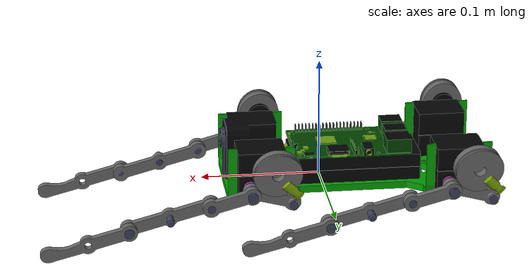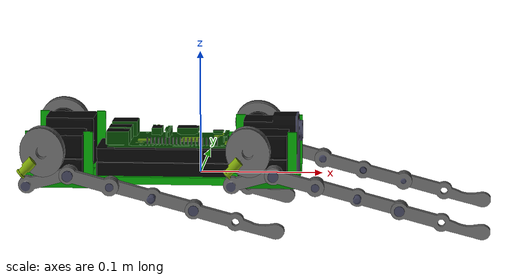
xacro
<?xml version="1.0" ?>
<robot xmlns:xacro="http://ros.org/wiki/xacro" name="felis">
<xacro:include filename="$(find riserobotdb)/defs/robots/felis/felis.common.urdf.xacro" />
<!-- Base Link -->
<xacro:urdf_link _name="base_link" _xyz="${felis_xyz}" _rpy="${felis_rpy}"
	_mesh="${felis_base_mesh}" _mass="${felis_baselink_mass}" _cg="${felis_baselink_cg}"
	 _ixx="${felis_baselink_ixx}" _iyy="${felis_baselink_iyy}" _izz="${felis_baselink_izz}"
	_ixy="${felis_baselink_ixy}" _ixz="${felis_baselink_ixz}" _iyz="${felis_baselink_iyz}"/>
<!-- Spools -->
<xacro:spool suffix="left" portion="front" geom_rpy="${felis_spool_joint_lf_rpy}" joint_xyz="${felis_spool_joint_lf_xyz}" />
<xacro:spool suffix="right" portion="front" geom_rpy="${felis_spool_joint_rf_rpy}" joint_xyz="${felis_spool_joint_rf_xyz}" />
<xacro:spool suffix="left" portion="rear" geom_rpy="${felis_spool_joint_lr_rpy}" joint_xyz="${felis_spool_joint_lr_xyz}" />
<xacro:spool suffix="right" portion="rear" geom_rpy="${felis_spool_joint_rr_rpy}" joint_xyz="${felis_spool_joint_rr_xyz}" />
<!-- Legs -->
<xacro:quadleg_left portion="front" geom_rpy="${felis_linkA_joint_lf_rpy}" joint_xyz="${felis_linkA_joint_lf_xyz}" />
<xacro:quadleg_left portion="rear" geom_rpy="${felis_linkA_joint_lr_rpy}" joint_xyz="${felis_linkA_joint_lr_xyz}" />
<xacro:quadleg_right portion="front" geom_rpy="${felis_linkA_joint_rf_rpy}" joint_xyz="${felis_linkA_joint_rf_xyz}" />
<xacro:quadleg_right portion="rear" geom_rpy="${felis_linkA_joint_rr_rpy}" joint_xyz="${felis_linkA_joint_rr_xyz}" />
</robot>

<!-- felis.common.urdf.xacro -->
<robot xmlns:xacro="http://ros.org/wiki/xacro">
<xacro:include filename="$(find riserobotdb)/defs/common/common.urdf.xacro" />
<xacro:include filename="$(find riserobotdb)/defs/robots/felis/felis.common.xacro" />
<!-- Leg Spool -->
<xacro:macro name="spool" params="suffix portion geom_rpy joint_xyz">
	<xacro:urdf_link _name="${suffix}_${portion}_spool_link" _xyz="0 0 0" _rpy="0 0 0"
		_mesh="${felis_spool_mesh}" _mass="${felis_spool_mass}" _cg="${felis_spool_cg}"
		_ixx="${felis_spool_ixx}" _iyy="${felis_spool_iyy}" _izz="${felis_spool_izz}"
		_ixy="${felis_spool_ixy}" _ixz="${felis_spool_ixz}" _iyz="${felis_spool_iyz}" />
	<xacro:urdf_revolute_joint _name="${suffix}_${portion}_spool_joint" _parent="base_link"
		_child="${suffix}_${portion}_spool_link" _axis="0 0 1" _xyz="${joint_xyz}" _rpy="${geom_rpy}" _lower="${spool_lower_angle}"
		_upper="${spool_upper_angle}" _effort="${spool_joint_effort}" _velocity="${spool_joint_velocity}" />
</xacro:macro>

<!-- Leg Links -->
<xacro:macro name="quadleg_left" params="portion geom_rpy joint_xyz">
	<xacro:urdf_link _name="left_${portion}_quadleg_linkA" _xyz="0 0 0" _rpy="0 0 0"
		_mesh="${felis_linkA_mesh}" _mass="${felis_linkA_mass}" _cg="${felis_linkA_cg}"
		_ixx="${felis_linkA_ixx}" _iyy="${felis_linkA_iyy}" _izz="${felis_linkA_izz}"
		_ixy="${felis_linkA_ixy}" _ixz="${felis_linkA_ixz}" _iyz="${felis_linkA_iyz}" />
	<xacro:urdf_link _name="left_${portion}_quadleg_linkB" _xyz="0 0 0" _rpy="0 0 0"
		_mesh="${felis_linkB_mesh}" _mass="${felis_linkB_mass}" _cg="${felis_linkB_cg}"
		_ixx="${felis_linkB_ixx}" _iyy="${felis_linkB_iyy}" _izz="${felis_linkB_izz}"
		_ixy="${felis_linkB_ixy}" _ixz="${felis_linkB_ixz}" _iyz="${felis_linkB_iyz}" />
	<xacro:urdf_link _name="left_${portion}_quadleg_linkC" _xyz="0 0 0" _rpy="0 0 0"
		_mesh="${felis_linkC_mesh}" _mass="${felis_linkC_mass}" _cg="${felis_linkC_cg}"
		_ixx="${felis_linkC_ixx}" _iyy="${felis_linkC_iyy}" _izz="${felis_linkC_izz}"
		_ixy="${felis_linkC_ixy}" _ixz="${felis_linkC_ixz}" _iyz="${felis_linkC_iyz}" />
	<xacro:urdf_link _name="left_${portion}_quadleg_linkD" _xyz="0 0 0" _rpy="0 0 0"
		_mesh="${felis_linkD_mesh}" _mass="${felis_linkD_mass}" _cg="${felis_linkD_cg}"
		_ixx="${felis_linkD_ixx}" _iyy="${felis_linkD_iyy}" _izz="${felis_linkD_izz}"
		_ixy="${felis_linkD_ixy}" _ixz="${felis_linkD_ixz}" _iyz="${felis_linkD_iyz}" />

	<xacro:urdf_revolute_joint _name="left_${portion}_linkA_joint" _parent="base_link"
		_child="left_${portion}_quadleg_linkA" _axis="0 0 1" _xyz="${joint_xyz}" _rpy="${geom_rpy}" _lower="${quadleg_jointA_lower_angle}"
		_upper="${quadleg_jointA_upper_angle}" _effort="${quadleg_joint_effort}" _velocity="${quadleg_joint_velocity}" />
	<xacro:urdf_revolute_joint _name="left_${portion}_linkB_joint" _parent="left_${portion}_quadleg_linkA"
		_child="left_${portion}_quadleg_linkB" _axis="0 0 1" _xyz="0 0 ${felis_jointAB_zoffset}" _rpy="0 0 -${felis_linkB_starting_angle}" _lower="${quadleg_jointB_lower_angle}"
		_upper="${quadleg_jointB_upper_angle}" _effort="${quadleg_joint_effort}" _velocity="${quadleg_joint_velocity}" />
	<xacro:urdf_revolute_joint _name="left_${portion}_linkC_joint" _parent="left_${portion}_quadleg_linkB"
		_child="left_${portion}_quadleg_linkC" _axis="0 0 1" _xyz="${felis_fulllink_centerlength/2} 0 0" _rpy="0 0 0" _lower="${quadleg_jointC_lower_angle}"
		_upper="${quadleg_jointC_upper_angle}" _effort="${quadleg_joint_effort}" _velocity="${quadleg_joint_velocity}" />
	<xacro:urdf_revolute_joint _name="left_${portion}_linkD_joint" _parent="left_${portion}_quadleg_linkC"
		_child="left_${portion}_quadleg_linkD" _axis="0 0 1" _xyz="${felis_fulllink_centerlength} 0 0" _rpy="0 0 0" _lower="${quadleg_jointD_lower_angle}"
		_upper="${quadleg_jointD_upper_angle}" _effort="${quadleg_joint_effort}" _velocity="${quadleg_joint_velocity}" />

</xacro:macro>
<xacro:macro name="quadleg_right" params="portion geom_rpy joint_xyz">
	<xacro:urdf_link _name="right_${portion}_quadleg_linkA" _xyz="0 0 0" _rpy="0 ${angle_180d} ${angle_180d}"
		_mesh="${felis_linkA_mesh}" _mass="${felis_linkA_mass}" _cg="${felis_linkA_cg}"
		_ixx="${felis_linkA_ixx}" _iyy="${felis_linkA_iyy}" _izz="${felis_linkA_izz}"
		_ixy="${felis_linkA_ixy}" _ixz="${felis_linkA_ixz}" _iyz="${felis_linkA_iyz}" />
	<xacro:urdf_link _name="right_${portion}_quadleg_linkB" _xyz="0 0 0" _rpy="0 0 0"
		_mesh="${felis_linkB_mesh}" _mass="${felis_linkB_mass}" _cg="${felis_linkB_cg}"
		_ixx="${felis_linkB_ixx}" _iyy="${felis_linkB_iyy}" _izz="${felis_linkB_izz}"
		_ixy="${felis_linkB_ixy}" _ixz="${felis_linkB_ixz}" _iyz="${felis_linkB_iyz}" />
	<xacro:urdf_link _name="right_${portion}_quadleg_linkC" _xyz="0 0 0" _rpy="0 ${angle_180d} ${angle_180d}"
		_mesh="${felis_linkC_mesh}" _mass="${felis_linkC_mass}" _cg="${felis_linkC_cg}"
		_ixx="${felis_linkC_ixx}" _iyy="${felis_linkC_iyy}" _izz="${felis_linkC_izz}"
		_ixy="${felis_linkC_ixy}" _ixz="${felis_linkC_ixz}" _iyz="${felis_linkC_iyz}" />
	<xacro:urdf_link _name="right_${portion}_quadleg_linkD" _xyz="0 0 0" _rpy="0 0 0"
		_mesh="${felis_linkD_mesh}" _mass="${felis_linkD_mass}" _cg="${felis_linkD_cg}"
		_ixx="${felis_linkD_ixx}" _iyy="${felis_linkD_iyy}" _izz="${felis_linkD_izz}"
		_ixy="${felis_linkD_ixy}" _ixz="${felis_linkD_ixz}" _iyz="${felis_linkD_iyz}" />

	<xacro:urdf_revolute_joint _name="right_${portion}_linkA_joint" _parent="base_link"
		_child="right_${portion}_quadleg_linkA" _axis="0 0 1" _xyz="${joint_xyz}" _rpy="${geom_rpy}" _lower="${quadleg_jointA_lower_angle}"
		_upper="${quadleg_jointA_upper_angle}" _effort="${quadleg_joint_effort}" _velocity="${quadleg_joint_velocity}" />
	<xacro:urdf_revolute_joint _name="right_${portion}_linkB_joint" _parent="right_${portion}_quadleg_linkA"
		_child="right_${portion}_quadleg_linkB" _axis="0 0 1" _xyz="0 0 ${-felis_jointAB_zoffset-felis_link_width}" _rpy="0 0 -${felis_linkB_starting_angle}" _lower="${quadleg_jointB_lower_angle}"
		_upper="${quadleg_jointB_upper_angle}" _effort="${quadleg_joint_effort}" _velocity="${quadleg_joint_velocity}" />
	<xacro:urdf_revolute_joint _name="right_${portion}_linkC_joint" _parent="right_${portion}_quadleg_linkB"
		_child="right_${portion}_quadleg_linkC" _axis="0 0 1" _xyz="${felis_fulllink_centerlength/2} 0 ${felis_link_width}" _rpy="0 0 0" _lower="${quadleg_jointC_lower_angle}"
		_upper="${quadleg_jointC_upper_angle}" _effort="${quadleg_joint_effort}" _velocity="${quadleg_joint_velocity}" />
	<xacro:urdf_revolute_joint _name="right_${portion}_linkD_joint" _parent="right_${portion}_quadleg_linkC"
		_child="right_${portion}_quadleg_linkD" _axis="0 0 1" _xyz="${felis_fulllink_centerlength} 0 -${felis_link_width}" _rpy="0 0 0" _lower="${quadleg_jointD_lower_angle}"
		_upper="${quadleg_jointD_upper_angle}" _effort="${quadleg_joint_effort}" _velocity="${quadleg_joint_velocity}" />

</xacro:macro>

</robot>

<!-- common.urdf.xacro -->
<robot xmlns:xacro="http://ros.org/wiki/xacro">
<!-- Macro to load mesh -->
<xacro:macro name="urdf_mesh" params="_filename">
	<geometry>
		<mesh filename="package://riserobotdb/${_filename}" />
	</geometry>
</xacro:macro>
<!-- Macro to load inertial information -->
<xacro:macro name="urdf_inertial" params="_mass _cg _ixx _iyy _izz _ixy _ixz _iyz">
	<inertial>
		<mass value="${_mass}"/>
		<origin xyz="${_cg}"/>
		<inertia ixx="${_ixx}" ixy="${_ixy}" ixz="${_ixz}"
				 iyy="${_iyy}" iyz="${_iyz}"
				 izz="${_izz}"/>
	</inertial>
</xacro:macro>
<!-- Macro of null link in urdf -->
<xacro:macro name="urdf_link_null" params="_name">
	<link name="${_name}">
		<xacro:urdf_inertial _mass="0.01" _cg="0 0 0" _ixx="1" _iyy="1" _izz="1" _ixy="0" _ixz="0" _iyz="0" />
		<visual>
			<origin xyz="0 0 0" rpy="0 0 0" />
			<geometry><box size="0 0 0" /></geometry>
		</visual>
		<collision>
			<origin xyz="0 0 0" rpy="0 0 0" />
			<geometry><box size="0 0 0" /></geometry>
		</collision>
	</link>
</xacro:macro>
<!-- Macro of a link in urdf -->
<xacro:macro name="urdf_link" params="_name _xyz _rpy _mesh _mass _cg _ixx _iyy _izz _ixy _ixz _iyz">
	<link name="${_name}">
		<xacro:urdf_inertial _mass="${_mass}" _cg="${_cg}" _ixx="${_ixx}"
			_iyy="${_iyy}" _izz="${_izz}" _ixy="${_ixy}" _ixz="${_ixz}" _iyz="${_iyz}" />
		<visual>
			<origin xyz="${_xyz}" rpy="${_rpy}" />
			<xacro:urdf_mesh _filename="${_mesh}" />
		</visual>
		<collision>
			<origin xyz="${_xyz}" rpy="${_rpy}" />
			<xacro:urdf_mesh _filename="${_mesh}" />
		</collision>
	</link>
</xacro:macro>
<xacro:macro name="urdf_link_color" params="_name _xyz _rpy _mesh _mass _cg _ixx _iyy _izz _ixy _ixz _iyz _colorname _rgba">
	<link name="${_name}">
		<xacro:urdf_inertial _mass="${_mass}" _cg="${_cg}" _ixx="${_ixx}"
			_iyy="${_iyy}" _izz="${_izz}" _ixy="${_ixy}" _ixz="${_ixz}" _iyz="${_iyz}" />
		<visual>
			<origin xyz="${_xyz}" rpy="${_rpy}" />
			<xacro:urdf_mesh _filename="${_mesh}" />
			<material name="${_colorname}">
				<color rgba="${_rgba}"/>
			</material>
		</visual>
		<collision>
			<origin xyz="${_xyz}" rpy="${_rpy}" />
			<xacro:urdf_mesh _filename="${_mesh}" />
		</collision>
	</link>
</xacro:macro>
<!-- Macro of a fixed joint in urdf -->
<xacro:macro name="urdf_fixed_joint" params="_name _parent _child _xyz _rpy">
	<joint name="${_name}" type="fixed">
		<origin xyz="${_xyz}" rpy="${_rpy}"/>
		<parent link="${_parent}" />
		<child link="${_child}" />
	</joint>
</xacro:macro>
<!-- Macro of a revolute joint in urdf -->
<xacro:macro name="urdf_revolute_joint" params="_name _parent _child _axis _xyz _rpy _lower _upper _effort _velocity" >
	<joint name="${_name}" type="revolute">
		<origin xyz="${_xyz}" rpy="${_rpy}"/>
		<parent link="${_parent}" />
		<child link="${_child}" />
		<axis xyz="${_axis}"/>
		<limit lower="${_lower}" upper="${_upper}" effort="${_effort}" velocity="${_velocity}" />
	</joint>
</xacro:macro>
<!-- Macro of a pan tilt joint in urdf -->
<xacro:macro name="urdf_pantilt_joints" params="_name _parent _child1 _child2 _xyz _rpy _lower1 _lower2 _upper1 _upper2 _effort _velocity">
	<xacro:urdf_revolute_joint _name="${_name}_pan_joint" _parent="${_parent}" _child="${_child1}" _axis="0 0 1" _xyz="${_xyz}" _rpy="${_rpy}" _lower="${_lower1}" _upper="${_upper1}" _effort="${_effort}" _velocity="${_velocity}" />
	<xacro:urdf_revolute_joint _name="${_name}_tilt_joint" _parent="${_child1}" _child="${_child2}" _axis="0 1 0" _xyz="0 0 0" _rpy="0 0 0" _lower="${_lower2}" _upper="${_upper2}" _effort="${_effort}" _velocity="${_velocity}"/>
</xacro:macro>
<!-- Macro of a wheel joint in urdf -->
<xacro:macro name="urdf_wheel_joint" params="_name _parent _child _axis _xyz _rpy _effort _velocity" >
	<joint name="${_name}" type="continuous">
		<origin xyz="${_xyz}" rpy="${_rpy}"/>
		<parent link="${_parent}" />
		<child link="${_child}" />
		<axis xyz="${_axis}"/>
		<limit effort="${_effort}" velocity="${_velocity}" />
	</joint>
</xacro:macro>
<!-- Macro of transmission joint controllers -->
<xacro:macro name="urdf_transmission" params="joint id">
	<transmission name="tran${id}">
		<type>transmission_interface/SimpleTransmission</type>
		<joint name="${joint}">
			<hardwareInterface>EffortJointInterface</hardwareInterface>
		</joint>
		<actuator name="motor${id}">
			<hardwareInterface>EffortJointInterface</hardwareInterface>
			<mechanicalReduction>1</mechanicalReduction>
		</actuator>
	</transmission>
</xacro:macro>
</robot>

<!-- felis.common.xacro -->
<robot xmlns:xacro="http://ros.org/wiki/xacro">
<!-- Mesh Files -->
<xacro:property name="felis_base_mesh" value="models/robots/felis/felisbody.dae" />
<xacro:property name="felis_spool_mesh" value="models/robots/felis/felislegspool.dae" />
<xacro:property name="felis_linkA_mesh" value="models/robots/felis/felislinkA.dae" />
<xacro:property name="felis_linkB_mesh" value="models/robots/felis/felislinkB.dae" />
<xacro:property name="felis_linkC_mesh" value="models/robots/felis/felislinkC.dae" />
<xacro:property name="felis_linkD_mesh" value="models/robots/felis/felislinkD.dae" />
<xacro:property name="felis_linkE_mesh" value="models/robots/felis/felislinkE.dae" />
<xacro:property name="felis_linkF_mesh" value="models/robots/felis/felislinkF.dae" />
<!-- Important Variables -->
<xacro:property name="felis_z" value="0" />
<xacro:property name="felis_leg_z" value="0.00990" />
<xacro:property name="felis_spool_z" value="0.02956" />
<xacro:property name="felis_jointfront_y" value="0.06030" />
<xacro:property name="felis_jointrear_y" value="0.06840" />
<xacro:property name="felis_jointfront_x" value="0.04382" />
<xacro:property name="felis_jointrear_x" value="0.10099" />
<xacro:property name="felis_motor_flipdifference" value="0.0202" />
<xacro:property name="felis_jointAB_zoffset" value="0.004" />
<xacro:property name="felis_fulllink_centerlength" value="0.07" />
<xacro:property name="felis_link_width" value="0.006" />

<!-- Base/Cage Data -->
<xacro:property name="felis_xyz" value="0 0 ${felis_z}" />
<xacro:property name="felis_rpy" value="0 0 0" />
<!-- Spool Data -->
<xacro:property name="felis_spool_joint_lf_xyz" value="${felis_jointfront_x} ${felis_jointfront_y} ${felis_spool_z}" />
<xacro:property name="felis_spool_joint_lf_rpy" value="-${angle_90d} 0 0" />
<xacro:property name="felis_spool_joint_rf_xyz" value="${felis_jointfront_x} -${felis_jointfront_y} ${felis_spool_z}" />
<xacro:property name="felis_spool_joint_rf_rpy" value="${angle_90d} -${angle_90d} 0" />
<xacro:property name="felis_spool_joint_lr_xyz" value="-${felis_jointrear_x+felis_motor_flipdifference} ${felis_jointrear_y} ${felis_spool_z}" />
<xacro:property name="felis_spool_joint_lr_rpy" value="-${angle_90d} 0 0" />
<xacro:property name="felis_spool_joint_rr_xyz" value="-${felis_jointrear_x+felis_motor_flipdifference} -${felis_jointrear_y} ${felis_spool_z}" />
<xacro:property name="felis_spool_joint_rr_rpy" value="${angle_90d} -${angle_90d} 0" />
<!-- Link A Data -->
<xacro:property name="felis_linkA_starting_angle" value="${angle_180d-angle_15d}" />
<xacro:property name="felis_linkA_joint_lf_xyz" value="${felis_jointfront_x+felis_motor_flipdifference} ${felis_jointfront_y} ${felis_leg_z}" />
<xacro:property name="felis_linkA_joint_rf_xyz" value="${felis_jointfront_x+felis_motor_flipdifference} -${felis_jointfront_y} ${felis_leg_z}" />
<xacro:property name="felis_linkA_joint_lr_xyz" value="-${felis_jointrear_x} ${felis_jointrear_y} ${felis_leg_z}" />
<xacro:property name="felis_linkA_joint_rr_xyz" value="-${felis_jointrear_x} -${felis_jointrear_y} ${felis_leg_z}" />
<xacro:property name="felis_linkA_joint_lf_rpy" value="-${angle_90d} ${felis_linkA_starting_angle} 0" />
<xacro:property name="felis_linkA_joint_rf_rpy" value="-${angle_90d} ${felis_linkA_starting_angle} 0" />
<xacro:property name="felis_linkA_joint_lr_rpy" value="-${angle_90d} ${felis_linkA_starting_angle} 0" />
<xacro:property name="felis_linkA_joint_rr_rpy" value="-${angle_90d} ${felis_linkA_starting_angle} 0" />
<!-- Link B Data -->
<xacro:property name="felis_linkB_starting_angle" value="${angle_180d-angle_30d}" />
<!-- Link C Data -->
<!-- Link D Data -->
<!-- Link E Data -->
<!-- Link F Data -->
<!-- Joints Constraints -->
<xacro:property name="spool_lower_angle" value="0" />
<xacro:property name="spool_upper_angle" value="1.0" />
<xacro:property name="quadleg_jointA_lower_angle"  value="0.0" />
<xacro:property name="quadleg_jointA_upper_angle"  value="1.4" />
<xacro:property name="quadleg_jointB_lower_angle"  value="0.0" />
<xacro:property name="quadleg_jointB_upper_angle"  value="1.4" />
<xacro:property name="quadleg_jointC_lower_angle"  value="0.0" />
<xacro:property name="quadleg_jointC_upper_angle"  value="1.4" />
<xacro:property name="quadleg_jointD_lower_angle"  value="0.0" />
<xacro:property name="quadleg_jointD_upper_angle"  value="1.4" />
<!-- Mass -->
<xacro:property name="felis_baselink_mass" value="1.5" />
<xacro:property name="felis_spool_mass" value="0.2" />
<xacro:property name="felis_linkA_mass" value="0.2" />
<xacro:property name="felis_linkB_mass" value="0.2" />
<xacro:property name="felis_linkC_mass" value="0.2" />
<xacro:property name="felis_linkD_mass" value="0.2" />
<xacro:property name="felis_linkE_mass" value="0.2" />
<xacro:property name="felis_linkF_mass" value="0.2" />
<!-- Cgs -->
<xacro:property name="felis_baselink_cg" value="0 0 0" />
<xacro:property name="felis_spool_cg" value="0 0 0" />
<xacro:property name="felis_linkA_cg" value="0 0 0" />
<xacro:property name="felis_linkB_cg" value="0 0 0" />
<xacro:property name="felis_linkC_cg" value="0 0 0" />
<xacro:property name="felis_linkD_cg" value="0 0 0" />
<xacro:property name="felis_linkE_cg" value="0 0 0" />
<xacro:property name="felis_linkF_cg" value="0 0 0" />
<!-- Inertial parameters -->
<xacro:property name="felis_baselink_ixx" value="0.1" />
<xacro:property name="felis_baselink_iyy" value="0.1" />
<xacro:property name="felis_baselink_izz" value="0.1" />
<xacro:property name="felis_baselink_ixy" value="0.1" />
<xacro:property name="felis_baselink_ixz" value="0.1" />
<xacro:property name="felis_baselink_iyz" value="0.1" />
<xacro:property name="felis_spool_ixx" value="0.1" />
<xacro:property name="felis_spool_iyy" value="0.1" />
<xacro:property name="felis_spool_izz" value="0.1" />
<xacro:property name="felis_spool_ixy" value="0.1" />
<xacro:property name="felis_spool_ixz" value="0.1" />
<xacro:property name="felis_spool_iyz" value="0.1" />
<xacro:property name="felis_linkA_ixx" value="0.1" />
<xacro:property name="felis_linkA_iyy" value="0.1" />
<xacro:property name="felis_linkA_izz" value="0.1" />
<xacro:property name="felis_linkA_ixy" value="0.1" />
<xacro:property name="felis_linkA_ixz" value="0.1" />
<xacro:property name="felis_linkA_iyz" value="0.1" />
<xacro:property name="felis_linkB_ixx" value="0.1" />
<xacro:property name="felis_linkB_iyy" value="0.1" />
<xacro:property name="felis_linkB_izz" value="0.1" />
<xacro:property name="felis_linkB_ixy" value="0.1" />
<xacro:property name="felis_linkB_ixz" value="0.1" />
<xacro:property name="felis_linkB_iyz" value="0.1" />
<xacro:property name="felis_linkC_ixx" value="0.1" />
<xacro:property name="felis_linkC_iyy" value="0.1" />
<xacro:property name="felis_linkC_izz" value="0.1" />
<xacro:property name="felis_linkC_ixy" value="0.1" />
<xacro:property name="felis_linkC_ixz" value="0.1" />
<xacro:property name="felis_linkC_iyz" value="0.1" />
<xacro:property name="felis_linkD_ixx" value="0.1" />
<xacro:property name="felis_linkD_iyy" value="0.1" />
<xacro:property name="felis_linkD_izz" value="0.1" />
<xacro:property name="felis_linkD_ixy" value="0.1" />
<xacro:property name="felis_linkD_ixz" value="0.1" />
<xacro:property name="felis_linkD_iyz" value="0.1" />
<xacro:property name="felis_linkE_ixx" value="0.1" />
<xacro:property name="felis_linkE_iyy" value="0.1" />
<xacro:property name="felis_linkE_izz" value="0.1" />
<xacro:property name="felis_linkE_ixy" value="0.1" />
<xacro:property name="felis_linkE_ixz" value="0.1" />
<xacro:property name="felis_linkE_iyz" value="0.1" />
<xacro:property name="felis_linkF_ixx" value="0.1" />
<xacro:property name="felis_linkF_iyy" value="0.1" />
<xacro:property name="felis_linkF_izz" value="0.1" />
<xacro:property name="felis_linkF_ixy" value="0.1" />
<xacro:property name="felis_linkF_ixz" value="0.1" />
<xacro:property name="felis_linkF_iyz" value="0.1" />
<!-- Simulation Camera parameters -->

<!-- Misc. Sensors Parameters -->

<!-- Friction parameters -->
<xacro:property name="spool_joint_effort" value="100" />
<xacro:property name="spool_joint_velocity" value="50" />
<xacro:property name="quadleg_joint_effort" value="100" />
<xacro:property name="quadleg_joint_velocity" value="50" />

<!-- SDF Specific parameters -->

<!-- Important Constants -->
<xacro:property name="angle_05d" value="0.087266463" />
<xacro:property name="angle_10d" value="0.174532925" />
<xacro:property name="angle_15d" value="0.261799388" />
<xacro:property name="angle_30d" value="0.523598776" />
<xacro:property name="angle_45d" value="0.785398163" />
<xacro:property name="angle_90d" value="1.570796327" />
<xacro:property name="angle_135d" value="2.35619449" />
<xacro:property name="angle_180d" value="3.141592654" />
</robot>
